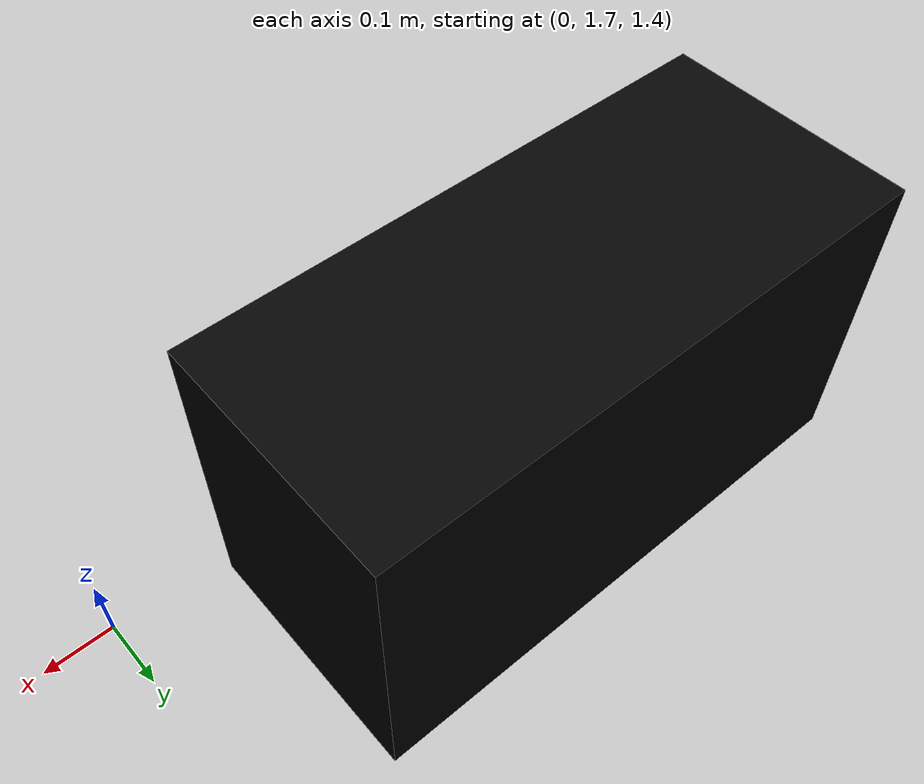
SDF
<?xml version='1.0'?>
<sdf version="1.6">
	<model name="locker_bin">
      <static>true</static>
      <link name="body">
        <visual name="visual">
          <geometry>
            <mesh>
            	<uri>model://locker_bin/locker_bin.dae</uri>
            	<scale>1 1 1</scale>
            </mesh>
          </geometry>
        </visual>
      </link>
    </model>
</sdf>
